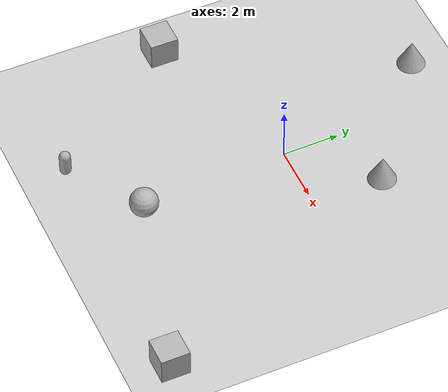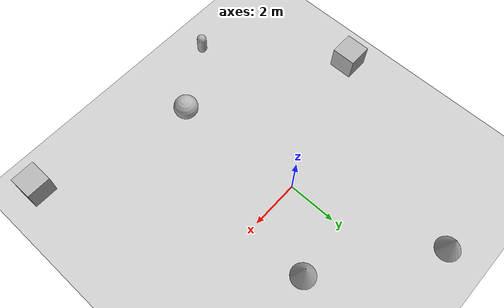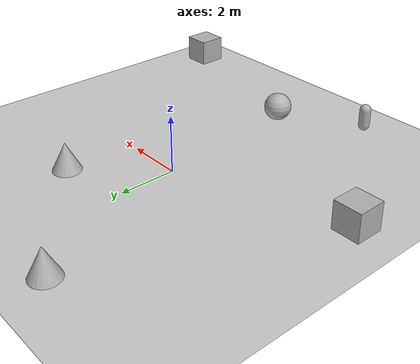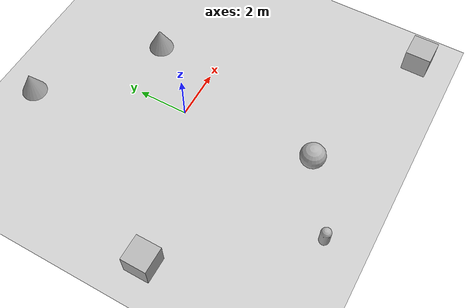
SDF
<sdf version='1.10'>
  <world name='empty'>
    <physics name='1ms' type='ignored'>
      <max_step_size>0.001</max_step_size>
      <real_time_factor>1</real_time_factor>
      <real_time_update_rate>1000</real_time_update_rate>
    </physics>
    <plugin name='gz::sim::systems::Physics' filename='gz-sim-physics-system'/>
    <plugin name='gz::sim::systems::UserCommands' filename='gz-sim-user-commands-system'/>
    <plugin name='gz::sim::systems::SceneBroadcaster' filename='gz-sim-scene-broadcaster-system'/>
    <plugin name='gz::sim::systems::Contact' filename='gz-sim-contact-system'/>
    <gravity>0 0 -9.8000000000000007</gravity>
    <magnetic_field>5.5644999999999998e-06 2.2875799999999999e-05 -4.2388400000000002e-05</magnetic_field>
    <atmosphere type='adiabatic'/>
    <scene>
      <ambient>0.400000006 0.400000006 0.400000006 1</ambient>
      <background>0.699999988 0.699999988 0.699999988 1</background>
      <shadows>true</shadows>
    </scene>
    <model name='ground_plane'>
      <static>true</static>
      <link name='link'>
        <collision name='collision'>
          <geometry>
            <plane>
              <normal>0 0 1</normal>
              <size>100 100</size>
            </plane>
          </geometry>
          <surface>
            <friction>
              <ode/>
            </friction>
            <bounce/>
            <contact/>
          </surface>
        </collision>
        <visual name='visual'>
          <geometry>
            <plane>
              <normal>0 0 1</normal>
              <size>100 100</size>
            </plane>
          </geometry>
          <material>
            <ambient>0.800000012 0.800000012 0.800000012 1</ambient>
            <diffuse>0.800000012 0.800000012 0.800000012 1</diffuse>
            <specular>0.800000012 0.800000012 0.800000012 1</specular>
          </material>
        </visual>
        <pose>0 0 0 0 0 0</pose>
        <inertial>
          <pose>0 0 0 0 0 0</pose>
          <mass>1</mass>
          <inertia>
            <ixx>1</ixx>
            <ixy>0</ixy>
            <ixz>0</ixz>
            <iyy>1</iyy>
            <iyz>0</iyz>
            <izz>1</izz>
          </inertia>
        </inertial>
        <enable_wind>false</enable_wind>
      </link>
      <pose>0 0 0 0 0 0</pose>
      <self_collide>false</self_collide>
    </model>
    <model name='cone'>
      <pose>2.3537143268357852 2.5392101442124173 0.5 0 0 0</pose>
      <link name='cone_link'>
        <inertial>
          <inertia>
            <ixx>0.074999999999999997</ixx>
            <ixy>0</ixy>
            <ixz>0</ixz>
            <iyy>0.074999999999999997</iyy>
            <iyz>0</iyz>
            <izz>0.074999999999999997</izz>
          </inertia>
          <mass>1</mass>
          <pose>0 0 0 0 0 0</pose>
        </inertial>
        <collision name='cone_collision'>
          <geometry>
            <cone>
              <radius>0.5</radius>
              <length>1</length>
            </cone>
          </geometry>
          <surface>
            <friction>
              <ode/>
            </friction>
            <bounce/>
            <contact/>
          </surface>
        </collision>
        <visual name='cone_visual'>
          <geometry>
            <cone>
              <radius>0.5</radius>
              <length>1</length>
            </cone>
          </geometry>
          <material>
            <ambient>0.300000012 0.300000012 0.300000012 1</ambient>
            <diffuse>0.699999988 0.699999988 0.699999988 1</diffuse>
            <specular>1 1 1 1</specular>
          </material>
        </visual>
        <pose>0 0 0 0 0 0</pose>
        <enable_wind>false</enable_wind>
      </link>
      <static>false</static>
      <self_collide>false</self_collide>
    </model>
    <model name='box'>
      <pose>6.6864941031592107 -7.0769672976933435 0.5 0 0 0</pose>
      <link name='box_link'>
        <inertial>
          <inertia>
            <ixx>0.16666</ixx>
            <ixy>0</ixy>
            <ixz>0</ixz>
            <iyy>0.16666</iyy>
            <iyz>0</iyz>
            <izz>0.16666</izz>
          </inertia>
          <mass>1</mass>
          <pose>0 0 0 0 0 0</pose>
        </inertial>
        <collision name='box_collision'>
          <geometry>
            <box>
              <size>1 1 1</size>
            </box>
          </geometry>
          <surface>
            <friction>
              <ode/>
            </friction>
            <bounce/>
            <contact/>
          </surface>
        </collision>
        <visual name='box_visual'>
          <geometry>
            <box>
              <size>1 1 1</size>
            </box>
          </geometry>
          <material>
            <ambient>0.300000012 0.300000012 0.300000012 1</ambient>
            <diffuse>0.699999988 0.699999988 0.699999988 1</diffuse>
            <specular>1 1 1 1</specular>
          </material>
        </visual>
        <pose>0 0 0 0 0 0</pose>
        <enable_wind>false</enable_wind>
      </link>
      <static>false</static>
      <self_collide>false</self_collide>
    </model>
    <model name='capsule'>
      <pose>-2.2656334998911571 -7.0091233006498292 0.5 0 0 0</pose>
      <link name='capsule_link'>
        <inertial>
          <inertia>
            <ixx>0.074153999999999998</ixx>
            <ixy>0</ixy>
            <ixz>0</ixz>
            <iyy>0.074153999999999998</iyy>
            <iyz>0</iyz>
            <izz>0.018769000000000001</izz>
          </inertia>
          <mass>1</mass>
          <pose>0 0 0 0 0 0</pose>
        </inertial>
        <collision name='capsule_collision'>
          <geometry>
            <capsule>
              <radius>0.20000000000000001</radius>
              <length>0.59999999999999998</length>
            </capsule>
          </geometry>
          <surface>
            <friction>
              <ode/>
            </friction>
            <bounce/>
            <contact/>
          </surface>
        </collision>
        <visual name='capsule_visual'>
          <geometry>
            <capsule>
              <radius>0.20000000000000001</radius>
              <length>0.59999999999999998</length>
            </capsule>
          </geometry>
          <material>
            <ambient>0.300000012 0.300000012 0.300000012 1</ambient>
            <diffuse>0.699999988 0.699999988 0.699999988 1</diffuse>
            <specular>1 1 1 1</specular>
          </material>
        </visual>
        <pose>0 0 0 0 0 0</pose>
        <enable_wind>false</enable_wind>
      </link>
      <static>false</static>
      <self_collide>false</self_collide>
    </model>
    <model name='cone_0'>
      <pose>-1.999558987777037 5.7835965738538135 0.5 0 0 0</pose>
      <link name='cone_link'>
        <inertial>
          <inertia>
            <ixx>0.074999999999999997</ixx>
            <ixy>0</ixy>
            <ixz>0</ixz>
            <iyy>0.074999999999999997</iyy>
            <iyz>0</iyz>
            <izz>0.074999999999999997</izz>
          </inertia>
          <mass>1</mass>
          <pose>0 0 0 0 0 0</pose>
        </inertial>
        <collision name='cone_collision'>
          <geometry>
            <cone>
              <radius>0.5</radius>
              <length>1</length>
            </cone>
          </geometry>
          <surface>
            <friction>
              <ode/>
            </friction>
            <bounce/>
            <contact/>
          </surface>
        </collision>
        <visual name='cone_visual'>
          <geometry>
            <cone>
              <radius>0.5</radius>
              <length>1</length>
            </cone>
          </geometry>
          <material>
            <ambient>0.300000012 0.300000012 0.300000012 1</ambient>
            <diffuse>0.699999988 0.699999988 0.699999988 1</diffuse>
            <specular>1 1 1 1</specular>
          </material>
        </visual>
        <pose>0 0 0 0 0 0</pose>
        <enable_wind>false</enable_wind>
      </link>
      <static>false</static>
      <self_collide>false</self_collide>
    </model>
    <model name='sphere'>
      <pose>0.41382416654400611 -5.2874455866640471 0.5 0 0 0</pose>
      <link name='sphere_link'>
        <inertial>
          <inertia>
            <ixx>0.10000000000000001</ixx>
            <ixy>0</ixy>
            <ixz>0</ixz>
            <iyy>0.10000000000000001</iyy>
            <iyz>0</iyz>
            <izz>0.10000000000000001</izz>
          </inertia>
          <mass>1</mass>
          <pose>0 0 0 0 0 0</pose>
        </inertial>
        <collision name='sphere_collision'>
          <geometry>
            <sphere>
              <radius>0.5</radius>
            </sphere>
          </geometry>
          <surface>
            <friction>
              <ode/>
            </friction>
            <bounce/>
            <contact/>
          </surface>
        </collision>
        <visual name='sphere_visual'>
          <geometry>
            <sphere>
              <radius>0.5</radius>
            </sphere>
          </geometry>
          <material>
            <ambient>0.300000012 0.300000012 0.300000012 1</ambient>
            <diffuse>0.699999988 0.699999988 0.699999988 1</diffuse>
            <specular>1 1 1 1</specular>
          </material>
        </visual>
        <pose>0 0 0 0 0 0</pose>
        <enable_wind>false</enable_wind>
      </link>
      <static>false</static>
      <self_collide>false</self_collide>
    </model>
    <model name='box_0'>
      <pose>-5.9925919100583389 -1.9825713156715699 0.5 0 0 0</pose>
      <link name='box_link'>
        <inertial>
          <inertia>
            <ixx>0.16666</ixx>
            <ixy>0</ixy>
            <ixz>0</ixz>
            <iyy>0.16666</iyy>
            <iyz>0</iyz>
            <izz>0.16666</izz>
          </inertia>
          <mass>1</mass>
          <pose>0 0 0 0 0 0</pose>
        </inertial>
        <collision name='box_collision'>
          <geometry>
            <box>
              <size>1 1 1</size>
            </box>
          </geometry>
          <surface>
            <friction>
              <ode/>
            </friction>
            <bounce/>
            <contact/>
          </surface>
        </collision>
        <visual name='box_visual'>
          <geometry>
            <box>
              <size>1 1 1</size>
            </box>
          </geometry>
          <material>
            <ambient>0.300000012 0.300000012 0.300000012 1</ambient>
            <diffuse>0.699999988 0.699999988 0.699999988 1</diffuse>
            <specular>1 1 1 1</specular>
          </material>
        </visual>
        <pose>0 0 0 0 0 0</pose>
        <enable_wind>false</enable_wind>
      </link>
      <static>false</static>
      <self_collide>false</self_collide>
    </model>
    <light name='sun' type='directional'>
      <pose>0 0 10 0 0 0</pose>
      <cast_shadows>true</cast_shadows>
      <intensity>1</intensity>
      <direction>-0.5 0.10000000000000001 -0.90000000000000002</direction>
      <diffuse>0.800000012 0.800000012 0.800000012 1</diffuse>
      <specular>0.200000003 0.200000003 0.200000003 1</specular>
      <attenuation>
        <range>1000</range>
        <linear>0.01</linear>
        <constant>0.90000000000000002</constant>
        <quadratic>0.001</quadratic>
      </attenuation>
      <spot>
        <inner_angle>0</inner_angle>
        <outer_angle>0</outer_angle>
        <falloff>0</falloff>
      </spot>
    </light>
  </world>
</sdf>
